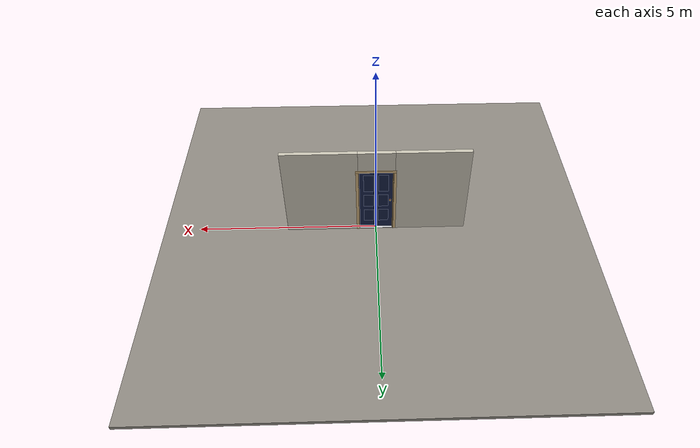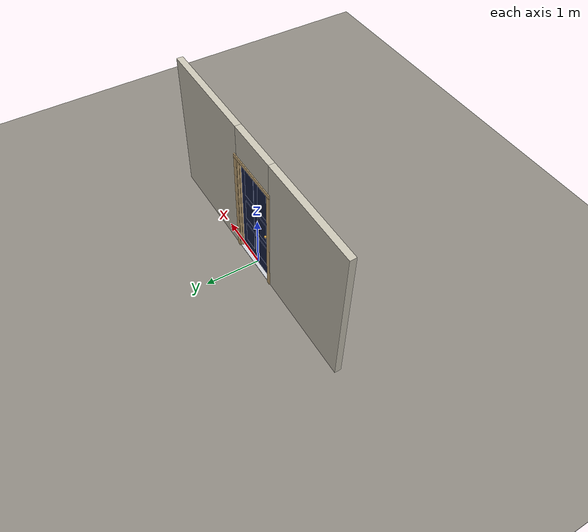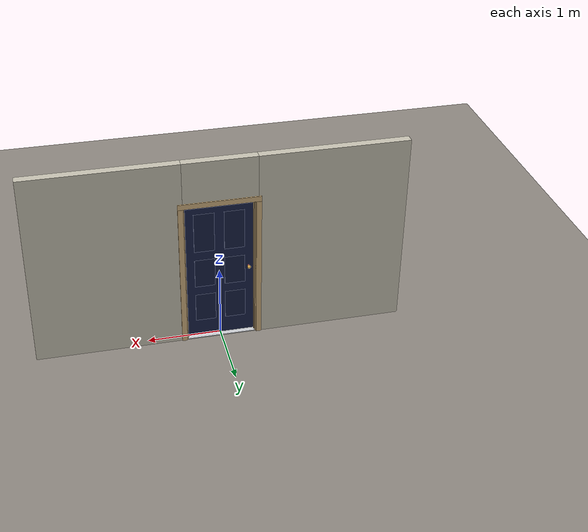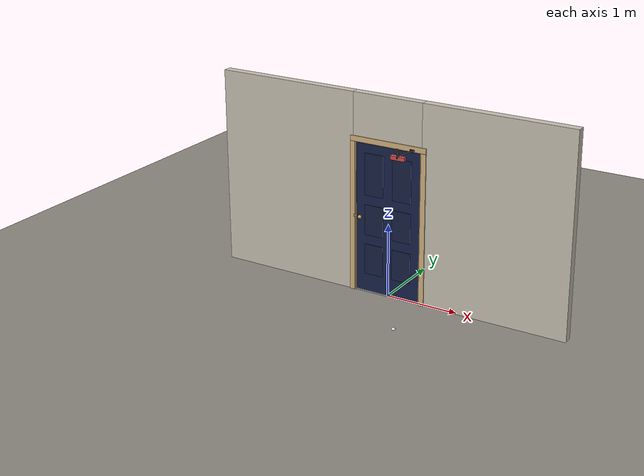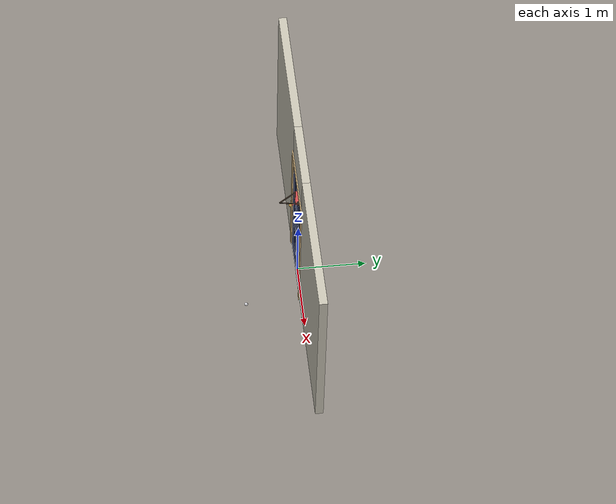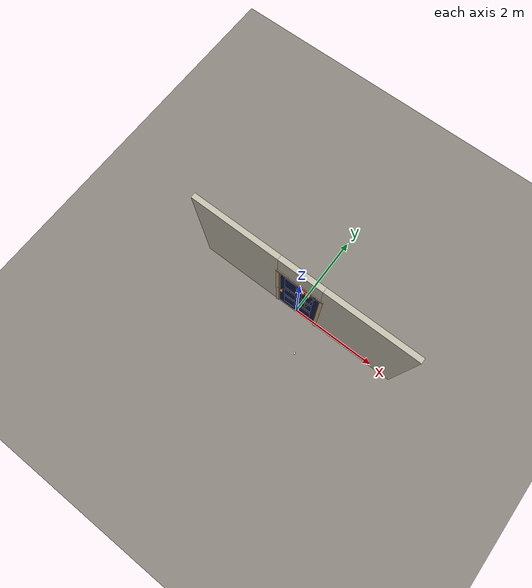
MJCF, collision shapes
<?xml version="1.0" ?>
<mujoco model="db0565_swing_single_full">
  <compiler angle="radian" meshdir="../../hardware" texturedir="../../textures" autolimits="true" inertiafromgeom="false"/>
  <option timestep="0.002" integrator="implicitfast" cone="elliptic" impratio="10" noslip_iterations="3">
    <flag multiccd="enable"/>
  </option>
  <size memory="16M"/>
  <default>
    <geom condim="4" solref="0.005 1" solimp="0.95 0.99 0.001"/>
    <joint solreflimit="0.005 1" solimplimit="0.95 0.99 0.001"/>
    <tendon solreflimit="0.005 1"/>
    <equality solref="0.002 1"/>
  </default>
  <visual>
    <headlight ambient="0.4 0.4 0.4" diffuse="0.7 0.7 0.7" specular="0.2 0.2 0.2"/>
    <quality shadowsize="4096"/>
    <map znear="0.01" zfar="60"/>
  </visual>
  <asset>
    <mesh name="closer_body_78399c60f5" file="closer_body_78399c60f5.obj"/>
    <mesh name="hinge_e22b26c0c1" file="hinge_e22b26c0c1.obj"/>
    <mesh name="hinge_jamb_e1d088f8dc" file="hinge_jamb_e1d088f8dc.obj"/>
    <mesh name="knob_d1888f6f03" file="knob_d1888f6f03.obj"/>
    <material name="mat_floor" rgba="0.55 0.53 0.5 1" specular="0.2" shininess="0.15" reflectance="0"/>
    <material name="mat_wall" rgba="0.78 0.76 0.7 1" specular="0.2" shininess="0.1" reflectance="0"/>
    <material name="mat_leaf" rgba="0.09 0.13 0.28 1" specular="0.2" shininess="0.62" reflectance="0"/>
    <material name="mat_leaf_panel" rgba="0.083 0.12 0.258 1" specular="0.2" shininess="0.62" reflectance="0"/>
    <material name="mat_hinge" rgba="0.65 0.66 0.68 1" specular="0.74" shininess="0.5" reflectance="0.36"/>
    <material name="mat_op_brass" rgba="0.85 0.66 0.3 1" specular="0.8" shininess="0.75" reflectance="0.4"/>
    <material name="mat_trim" rgba="0.85 0.66 0.3 1" specular="0.8" shininess="0.75" reflectance="0.4"/>
    <material name="mat_bolt" rgba="0.85 0.66 0.3 1" specular="0.8" shininess="0.75" reflectance="0.4"/>
    <material name="mat_frame" rgba="0.82 0.7 0.5 1" specular="0.2" shininess="0.45" reflectance="0"/>
    <material name="mat_seal" rgba="0.1 0.1 0.1 1" specular="0.2" shininess="0.1" reflectance="0"/>
    <material name="mat_threshold" rgba="0.8 0.81 0.83 1" specular="0.8" shininess="0.6" reflectance="0.4"/>
    <material name="mat_closer" rgba="0.22 0.17 0.13 1" specular="0.8" shininess="0.6" reflectance="0.4"/>
    <material name="mat_stop" rgba="0.9 0.9 0.92 1" specular="0.8" shininess="0.9" reflectance="0.4"/>
    <texture name="skybox" type="skybox" builtin="gradient" rgb1="0.6 0.7 0.85" rgb2="0.9 0.92 0.95" width="256" height="256"/>
  </asset>
  <worldbody>
    <light name="sun" pos="1.5 -2.5 4" dir="-0.3 0.5 -0.8" directional="true" diffuse="0.8 0.8 0.8" specular="0.3 0.3 0.3" castshadow="true"/>
    <light name="fill" pos="-1.5 2.5 3" dir="0.3 -0.5 -0.7" directional="true" diffuse="0.35 0.35 0.4" castshadow="false"/>
    <camera name="robot_view" pos="0 -2.513687 1.734312" xyaxes="1 0 0 0 0.26963 0.962964" fovy="52"/>
    <camera name="far_view" pos="0 2.570688 1.734312" xyaxes="-1 0 0 0 -0.26963 0.962964" fovy="52"/>
    <camera name="iso" pos="-1.932062 -2.106937 2.141063" xyaxes="0.741536 -0.670913 0 0.242917 0.268487 0.932151" fovy="46"/>
    <camera name="detail_handle" pos="-0.2065 -0.8685 1.33" xyaxes="0.97561 0.219512 0 -0.070934 0.315262 0.94635" fovy="38"/>
    <geom name="floor" type="box" size="6 6 0.05" pos="0 0 -0.05" material="mat_floor" group="0" contype="1" conaffinity="1" friction="0.8 0.005 0.0001" density="2400"/>
    <geom name="wall_left" type="box" size="0.99525 0.0575 1.35" pos="-1.50475 0.0285 1.35" material="mat_wall" group="0" contype="1" conaffinity="1" friction="0.6 0.005 0.0001" density="800"/>
    <geom name="wall_right" type="box" size="1.01025 0.0575 1.35" pos="1.48975 0.0285 1.35" material="mat_wall" group="0" contype="1" conaffinity="1" friction="0.6 0.005 0.0001" density="800"/>
    <geom name="wall_header" type="box" size="0.4945 0.0575 0.303" pos="-0.015 0.0285 2.397" material="mat_wall" group="0" contype="1" conaffinity="1" friction="0.6 0.005 0.0001" density="800"/>
    <geom name="hinge_0_jamb" type="mesh" mesh="hinge_jamb_e1d088f8dc" pos="0.4575 -0.029 0.267" quat="0 0 1 0" material="mat_hinge" group="1" contype="0" conaffinity="0" density="7850"/>
    <geom name="hinge_1_jamb" type="mesh" mesh="hinge_jamb_e1d088f8dc" pos="0.4575 -0.029 1.029" quat="0 0 1 0" material="mat_hinge" group="1" contype="0" conaffinity="0" density="7850"/>
    <geom name="hinge_2_jamb" type="mesh" mesh="hinge_jamb_e1d088f8dc" pos="0.4575 -0.029 1.861" quat="0 0 1 0" material="mat_hinge" group="1" contype="0" conaffinity="0" density="7850"/>
    <geom name="jamb_hinge" type="box" size="0.0095 0.0575 1.0225" pos="0.47 0.0285 1.0225" material="mat_frame" group="0" contype="1" conaffinity="1" friction="0.6 0.005 0.0001" density="400"/>
    <geom name="strike_1050_wall_n" type="box" size="0.0245 0.039075 0.0167" pos="-0.485 0.046925 1.05" material="mat_frame" group="0" contype="1" conaffinity="1" friction="0.6 0.005 0.0001" density="400"/>
    <geom name="strike_1050_wall_p" type="box" size="0.0245 0.008 0.0167" pos="-0.485 -0.01585 1.05" material="mat_frame" group="0" contype="1" conaffinity="1" friction="0.6 0.005 0.0001" density="400"/>
    <geom name="strike_1050_ramp" type="box" size="0.0245 0.01649 0.0167" pos="-0.489636 -0.028673 1.05" quat="0.977148 0 0 -0.212558" material="mat_frame" group="0" contype="1" conaffinity="1" friction="0.12 0.005 0.0001" density="400"/>
    <geom name="strike_1050_back" type="box" size="0.01615 0.00785 0.0167" pos="-0.49335 0 1.05" material="mat_frame" group="0" contype="1" conaffinity="1" friction="0.6 0.005 0.0001" density="400"/>
    <geom name="jamb_strike_0" type="box" size="0.0245 0.0575 0.51665" pos="-0.485 0.0285 0.51665" material="mat_frame" group="0" contype="1" conaffinity="1" friction="0.6 0.005 0.0001" density="400"/>
    <geom name="jamb_strike_1" type="box" size="0.0245 0.0575 0.48915" pos="-0.485 0.0285 1.55585" material="mat_frame" group="0" contype="1" conaffinity="1" friction="0.6 0.005 0.0001" density="400"/>
    <geom name="jamb_head" type="box" size="0.4945 0.0575 0.0095" pos="-0.015 0.0285 2.0545" material="mat_frame" group="0" contype="1" conaffinity="1" friction="0.6 0.005 0.0001" density="400"/>
    <geom name="head_stud" type="box" size="0.4945 0.0575 0.015" pos="-0.015 0.0285 2.079" material="mat_wall" group="0" contype="1" conaffinity="1" friction="0.6 0.005 0.0001" density="500"/>
    <geom name="stop_hinge" type="box" size="0.0055 0.016 1.0225" pos="0.455 0.0385 1.0225" material="mat_frame" group="0" contype="1" conaffinity="1" friction="0.6 0.005 0.0001" density="400"/>
    <geom name="stop_strike" type="box" size="0.0055 0.016 1.0225" pos="-0.455 0.0385 1.0225" material="mat_frame" group="0" contype="1" conaffinity="1" friction="0.6 0.005 0.0001" density="400"/>
    <geom name="stop_head" type="box" size="0.4605 0.016 0.0055" pos="0 0.0385 2.0395" material="mat_frame" group="0" contype="1" conaffinity="1" friction="0.6 0.005 0.0001" density="400"/>
    <geom name="seal_hinge" type="box" size="0.004 0.003 1.0225" pos="0.4575 0.025 1.0225" material="mat_seal" group="1" contype="0" conaffinity="0" density="1100"/>
    <geom name="seal_strike" type="box" size="0.004 0.003 1.0225" pos="-0.4575 0.025 1.0225" material="mat_seal" group="1" contype="0" conaffinity="0" density="1100"/>
    <geom name="seal_head" type="box" size="0.4405 0.003 0.008" pos="0 0.025 2.033" material="mat_seal" group="1" contype="0" conaffinity="0" density="1100"/>
    <geom name="casing_l_n" type="box" size="0.035 0.008 1.032" pos="-0.5095 -0.037 1.0225" material="mat_frame" group="2" contype="0" conaffinity="0" density="400"/>
    <geom name="casing_r_n" type="box" size="0.035 0.008 1.032" pos="0.5095 -0.037 1.0225" material="mat_frame" group="2" contype="0" conaffinity="0" density="400"/>
    <geom name="casing_h_n" type="box" size="0.5445 0.008 0.035" pos="0 -0.037 2.094" material="mat_frame" group="2" contype="0" conaffinity="0" density="400"/>
    <geom name="casing_l_p" type="box" size="0.035 0.008 1.032" pos="-0.5095 0.094 1.0225" material="mat_frame" group="2" contype="0" conaffinity="0" density="400"/>
    <geom name="casing_r_p" type="box" size="0.035 0.008 1.032" pos="0.5095 0.094 1.0225" material="mat_frame" group="2" contype="0" conaffinity="0" density="400"/>
    <geom name="casing_h_p" type="box" size="0.5445 0.008 0.035" pos="0 0.094 2.094" material="mat_frame" group="2" contype="0" conaffinity="0" density="400"/>
    <geom name="threshold" type="box" size="0.4795 0.0575 0.0065" pos="0 0.0285 0.0065" material="mat_threshold" group="0" contype="1" conaffinity="1" friction="0.5 0.005 0.0001" density="2700"/>
    <geom name="closer_bracket" type="box" size="0.03 0.012 0.014" pos="0.3605 -0.057 2.075" material="mat_closer" group="1" contype="0" conaffinity="0" density="2700"/>
    <geom name="floor_stop_dome" type="sphere" size="0.025" pos="0.545135 -0.801201 0" material="mat_stop" group="0" contype="1" conaffinity="1" friction="0.6 0.005 0.0001" density="7000"/>
    <site name="approach_point" pos="0 -1.5 0" quat="1 0 0 0" size="0.05" rgba="0.2 0.9 0.2 0.5" group="4"/>
    <site name="goal_point" pos="0 1.5 0" quat="1 0 0 0" size="0.05" rgba="0.2 0.9 0.2 0.5" group="4"/>
    <site name="door_plane_center" pos="0 0 1.0225" quat="1 0 0 0" size="0.02" rgba="0.2 0.9 0.2 0.5" group="4"/>
    <body name="leaf" pos="0.4605 0 0">
      <inertial pos="-0.422132 -0.008801 1.174543" mass="22.89104" quat="0.513511 -0.512818 -0.478995 -0.493851" diaginertia="1.492748242 9.216383997 10.688987115"/>
      <joint name="leaf_hinge" type="hinge" axis="0 0 1" pos="-0.003 -0.029 0" limited="true" range="0 1.658063" solreflimit="0.02 1" damping="6.25611" frictionloss="0.952379" stiffness="9.135494" springref="-1.778776" armature="0.02"/>
      <geom name="leaf_slab" type="box" size="0.457 0.022 1.012" pos="-0.46 0 1.029" material="mat_leaf" group="0" contype="1" conaffinity="1" friction="0.4 0.005 0.0001" density="1"/>
      <geom name="leaf_panel_0_n" type="box" size="0.13573 0.003 0.208024" pos="-0.25927 -0.025 0.467664" material="mat_leaf_panel" group="1" contype="0" conaffinity="0" density="1"/>
      <geom name="leaf_panel_0_p" type="box" size="0.13573 0.003 0.208024" pos="-0.25927 0.025 0.467664" material="mat_leaf_panel" group="1" contype="0" conaffinity="0" density="1"/>
      <geom name="leaf_panel_1_n" type="box" size="0.13573 0.003 0.208024" pos="-0.66073 -0.025 0.467664" material="mat_leaf_panel" group="1" contype="0" conaffinity="0" density="1"/>
      <geom name="leaf_panel_1_p" type="box" size="0.13573 0.003 0.208024" pos="-0.66073 0.025 0.467664" material="mat_leaf_panel" group="1" contype="0" conaffinity="0" density="1"/>
      <geom name="leaf_panel_2_n" type="box" size="0.13573 0.003 0.208024" pos="-0.25927 -0.025 1.013712" material="mat_leaf_panel" group="1" contype="0" conaffinity="0" density="1"/>
      <geom name="leaf_panel_2_p" type="box" size="0.13573 0.003 0.208024" pos="-0.25927 0.025 1.013712" material="mat_leaf_panel" group="1" contype="0" conaffinity="0" density="1"/>
      <geom name="leaf_panel_3_n" type="box" size="0.13573 0.003 0.208024" pos="-0.66073 -0.025 1.013712" material="mat_leaf_panel" group="1" contype="0" conaffinity="0" density="1"/>
      <geom name="leaf_panel_3_p" type="box" size="0.13573 0.003 0.208024" pos="-0.66073 0.025 1.013712" material="mat_leaf_panel" group="1" contype="0" conaffinity="0" density="1"/>
      <geom name="leaf_panel_4_n" type="box" size="0.13573 0.003 0.284032" pos="-0.25927 -0.025 1.635768" material="mat_leaf_panel" group="1" contype="0" conaffinity="0" density="1"/>
      <geom name="leaf_panel_4_p" type="box" size="0.13573 0.003 0.284032" pos="-0.25927 0.025 1.635768" material="mat_leaf_panel" group="1" contype="0" conaffinity="0" density="1"/>
      <geom name="leaf_panel_5_n" type="box" size="0.13573 0.003 0.284032" pos="-0.66073 -0.025 1.635768" material="mat_leaf_panel" group="1" contype="0" conaffinity="0" density="1"/>
      <geom name="leaf_panel_5_p" type="box" size="0.13573 0.003 0.284032" pos="-0.66073 0.025 1.635768" material="mat_leaf_panel" group="1" contype="0" conaffinity="0" density="1"/>
      <geom name="hinge_0" type="mesh" mesh="hinge_e22b26c0c1" pos="-0.003 -0.029 0.267" quat="0 0 1 0" material="mat_hinge" group="1" contype="0" conaffinity="0" density="7850"/>
      <geom name="hinge_1" type="mesh" mesh="hinge_e22b26c0c1" pos="-0.003 -0.029 1.029" quat="0 0 1 0" material="mat_hinge" group="1" contype="0" conaffinity="0" density="7850"/>
      <geom name="hinge_2" type="mesh" mesh="hinge_e22b26c0c1" pos="-0.003 -0.029 1.861" quat="0 0 1 0" material="mat_hinge" group="1" contype="0" conaffinity="0" density="7850"/>
      <geom name="leaf_latch_bolt_faceplate" type="box" size="0.0006 0.01235 0.0267" pos="-0.9164 0 1.05" material="mat_bolt" group="1" contype="0" conaffinity="0" density="8500"/>
      <geom name="closer_body" type="mesh" mesh="closer_body_78399c60f5" pos="-0.3 -0.022 1.944" quat="0 0 -0.707107 0.707107" material="mat_closer" group="1" contype="0" conaffinity="0" density="2000"/>
      <geom name="closer_body_col" type="box" size="0.1 0.03 0.025" pos="-0.3 -0.052 1.944" material="mat_closer" group="3" contype="1" conaffinity="1" rgba="0.8 0.3 0.3 0.25" friction="0.6 0.005 0.0001" density="2000"/>
      <geom name="closer_pinion_shaft" type="cylinder" size="0.008 0.0655" pos="-0.3 -0.08 2.0095" material="mat_closer" group="1" contype="0" conaffinity="0" density="2700"/>
      <site name="leaf_edge_mid" pos="-0.917 0 1.012" quat="1 0 0 0" size="0.02" rgba="0.2 0.9 0.2 0.5" group="4"/>
      <body name="leaf_handle" pos="-0.847 0 1.05">
        <inertial pos="0 0 0" mass="1.151952" quat="0.707107 0 0 -0.707107" diaginertia="0.000312514 0.004264603 0.004264603"/>
        <joint name="leaf_handle_hinge" type="hinge" axis="0 1 0" limited="true" range="0 0.87" damping="0.143614" frictionloss="0.038" stiffness="0.5" springref="-0.5" armature="0.01"/>
        <geom name="leaf_handle_spindle" type="cylinder" size="0.006 0.03" pos="0 0 0" quat="0.707107 -0.707107 0 0" material="mat_op_brass" group="1" contype="0" conaffinity="0" density="7850"/>
        <geom name="leaf_handle_knob_n" type="mesh" mesh="knob_d1888f6f03" pos="0 -0.022 0" quat="0 0 -0.707107 0.707107" material="mat_op_brass" group="1" contype="0" conaffinity="0" density="3000"/>
        <geom name="leaf_handle_knob_col_n" type="sphere" size="0.0243" pos="0 -0.0685 0" material="mat_op_brass" group="0" contype="1" conaffinity="1" friction="0.9 0.01 0.0001" density="3000"/>
        <geom name="leaf_handle_knob_neck_n" type="cylinder" size="0.011 0.012" pos="0 -0.034 0" quat="0.707107 -0.707107 0 0" material="mat_op_brass" group="3" contype="1" conaffinity="1" rgba="0.8 0.3 0.3 0.25" friction="0.6 0.005 0.0001" density="3000"/>
        <geom name="leaf_handle_knob_p" type="mesh" mesh="knob_d1888f6f03" pos="0 0.022 0" quat="0 0 0.707107 0.707107" material="mat_op_brass" group="1" contype="0" conaffinity="0" density="3000"/>
        <geom name="leaf_handle_knob_col_p" type="sphere" size="0.0243" pos="0 0.0685 0" material="mat_op_brass" group="0" contype="1" conaffinity="1" friction="0.9 0.01 0.0001" density="3000"/>
        <geom name="leaf_handle_knob_neck_p" type="cylinder" size="0.011 0.012" pos="0 0.034 0" quat="0.707107 -0.707107 0 0" material="mat_op_brass" group="3" contype="1" conaffinity="1" rgba="0.8 0.3 0.3 0.25" friction="0.6 0.005 0.0001" density="3000"/>
        <site name="leaf_handle_grip_n" pos="0 -0.0685 0" quat="1 0 0 0" size="0.012" rgba="0.2 0.9 0.2 0.5" group="4"/>
        <site name="leaf_handle_grip_p" pos="0 0.0685 0" quat="1 0 0 0" size="0.012" rgba="0.2 0.9 0.2 0.5" group="4"/>
      </body>
      <body name="leaf_latch_bolt" pos="-0.917 0 1.05">
        <inertial pos="0.00865 0 0" mass="0.041419" quat="0.92388 0.382683 0 0" diaginertia="0.000000798 0.000005598 0.000005598"/>
        <joint name="leaf_latch_bolt_slide" type="slide" axis="1 0 0" limited="true" range="0 0.0127" damping="2" frictionloss="0.3" stiffness="300" springref="-0.008333" armature="0.1"/>
        <geom name="leaf_latch_bolt_capsule" type="capsule" size="0.00635 0.015" pos="0.00865 0 0" quat="0.707107 0 -0.707107 0" material="mat_bolt" group="0" contype="1" conaffinity="1" friction="0.2 0.005 0.0001" density="8500"/>
      </body>
      <body name="closer_arm_main" pos="-0.3 -0.08 2.075" quat="0.881485 0 0 -0.472212">
        <inertial pos="0.14 0 0" mass="0.12096" quat="1 0 0 0" diaginertia="0.000003588 0.00079128 0.000792852"/>
        <joint name="closer_pinion" type="hinge" axis="0 0 1" limited="false" damping="0.01" armature="0.002"/>
        <geom name="closer_arm_main_geom" type="box" size="0.14 0.008 0.005" pos="0.14 0 0" material="mat_closer" group="1" contype="0" conaffinity="0" density="2700"/>
        <body name="closer_arm_fore" pos="0.28 0 0" quat="0.371222 0 0 0.928544">
          <inertial pos="0.128088 0 0" mass="0.076531" quat="1 0 0 0" diaginertia="0.000001771 0.000437665 0.000438201"/>
          <joint name="closer_elbow" type="hinge" axis="0 0 1" limited="false" damping="0.01" armature="0.002"/>
          <geom name="closer_arm_fore_geom" type="box" size="0.1125 0.007 0.004" pos="0.1125 0 0" material="mat_closer" group="1" contype="0" conaffinity="0" density="2700"/>
          <geom name="closer_fore_neck" type="box" size="0.0175 0.003 0.003" pos="0.2425 0 0" material="mat_closer" group="1" contype="0" conaffinity="0" density="2700"/>
          <geom name="closer_fore_pivot" type="cylinder" size="0.005 0.012" pos="0.26 0 0" material="mat_closer" group="1" contype="0" conaffinity="0" density="2700"/>
        </body>
      </body>
    </body>
  </worldbody>
  <tendon>
    <fixed name="leaf_latch_bolt_coupling" limited="true" range="0 10">
      <joint joint="leaf_latch_bolt_slide" coef="1"/>
      <joint joint="leaf_handle_hinge" coef="-0.015679"/>
    </fixed>
  </tendon>
  <equality>
    <connect name="closer_arm_connect" body1="closer_arm_fore" body2="world" anchor="0.26 0 0" active="true"/>
  </equality>
  <contact>
    <exclude body1="closer_arm_main" body2="leaf"/>
    <exclude body1="closer_arm_fore" body2="leaf"/>
    <exclude body1="closer_arm_main" body2="closer_arm_fore"/>
  </contact>
  <sensor>
    <jointpos name="leaf_hinge_pos" joint="leaf_hinge"/>
    <jointvel name="leaf_hinge_vel" joint="leaf_hinge"/>
    <jointpos name="leaf_handle_hinge_pos" joint="leaf_handle_hinge"/>
    <jointvel name="leaf_handle_hinge_vel" joint="leaf_handle_hinge"/>
    <jointpos name="leaf_latch_bolt_slide_pos" joint="leaf_latch_bolt_slide"/>
    <jointvel name="leaf_latch_bolt_slide_vel" joint="leaf_latch_bolt_slide"/>
  </sensor>
</mujoco>
